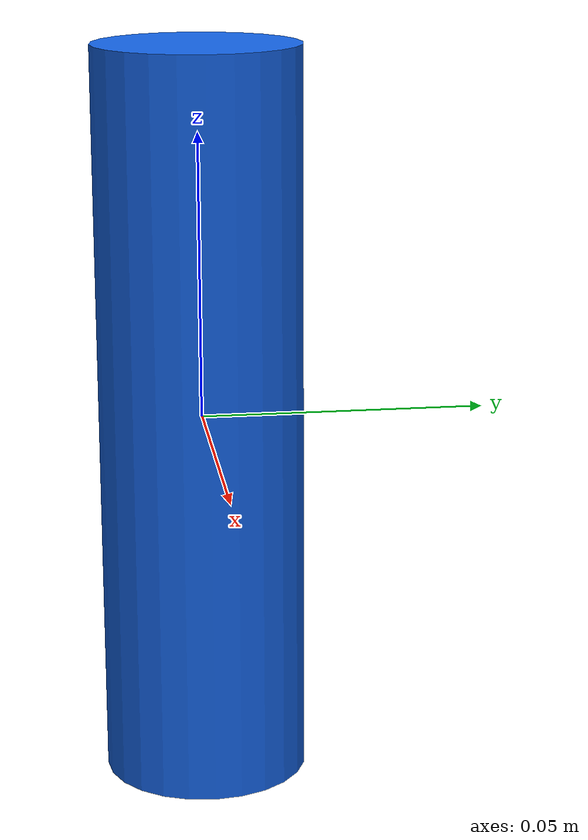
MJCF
<?xml version="1.0" encoding="UTF-8"?>
<!-- Clean-room source-only fallback for a VLABench ChemistryTube solution. -->
<mujoco model="libero_vlabench_chemistry_solution_primitive">
  <worldbody>
    <body>
      <body name="object">
        <geom name="solution_visual" type="cylinder" group="1" contype="0" conaffinity="0"
              size="0.018 0.065" rgba="0.08 0.40 0.92 1"/>
        <geom name="solution_collision" type="cylinder" group="0" size="0.017 0.064"
              mass="0.05"/>
      </body>
      <site name="bottom_site" pos="0 0 -0.065" size="0.005" rgba="0 0 0 0"/>
      <site name="top_site" pos="0 0 0.065" size="0.005" rgba="0 0 0 0"/>
      <site name="horizontal_radius_site" pos="0.018 0 0" size="0.005" rgba="0 0 0 0"/>
    </body>
  </worldbody>
</mujoco>
